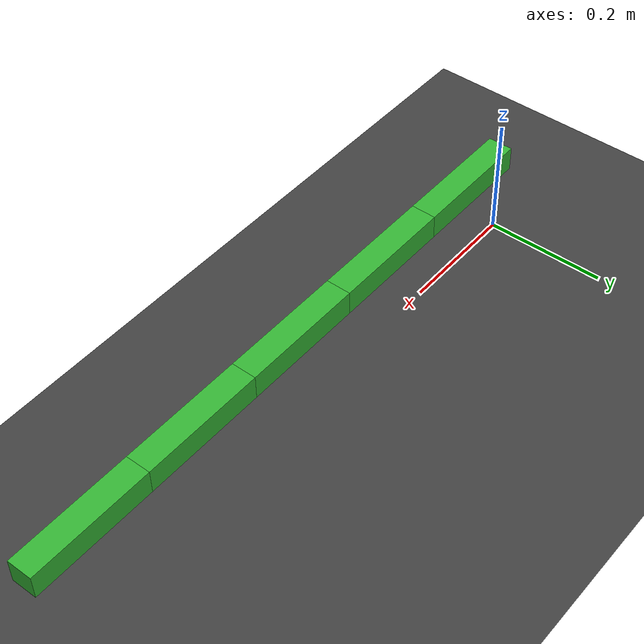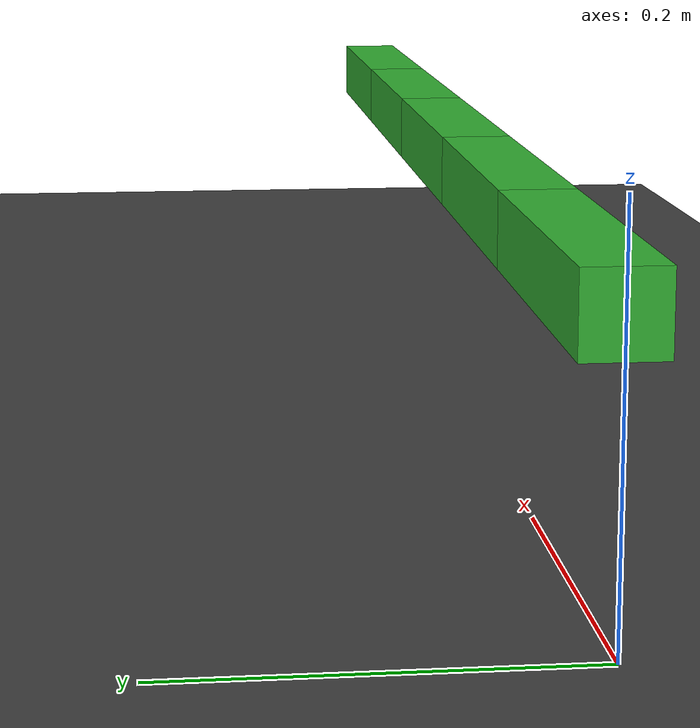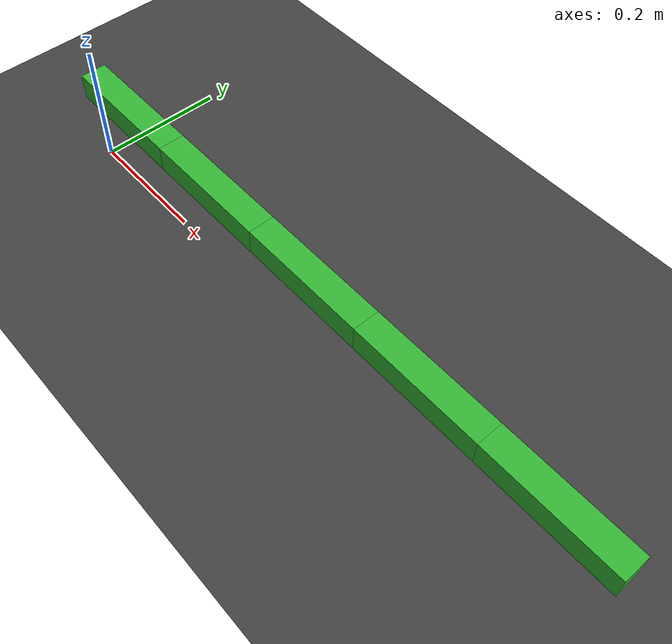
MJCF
<mujoco model="snake_scene">
  <include file="snake.xml"/>

  <statistic center="1 -0.8 1.1" extent=".3"/>

  <visual>
    <headlight diffuse="0.6 0.6 0.6" ambient="0.1 0.1 0.1" specular="0.9 0.9 0.9"/>
    <rgba haze="0.15 0.25 0.35 1"/>
    <global azimuth="140" elevation="-20"/>
  </visual>

  <asset>
    <texture builtin='checker' height='512' name='plane' rgb1='0.2 0.2 0.2' rgb2='0.3 0.3 0.3' type='2d' width='512'/>
    <texture builtin='gradient' height='128' rgb1='0.4 0.6 0.8' rgb2='0 0 0' type='skybox' width='128'/>
    <texture type="skybox" builtin="gradient" rgb1="1 1 1" rgb2="1 1 1" width="800" height="800"/>
    <texture type="2d" name="groundplane" builtin="checker" mark="edge" rgb1="1 1 1" rgb2="1 1 1"
      markrgb="0 0 0" width="300" height="300"/>
    <material name='plane' reflectance='0.000000' texrepeat='1 1' texture='plane' texuniform='true'/>
  </asset>

  <worldbody>
    <geom conaffinity="1" contype="1" condim="3" friction="1 .1 .1" name="floor" pos="0 0 0" size="40 40 0.125" type="plane" material="plane" rgba="0.5 0.5 0.5 1.0"/>
  </worldbody>
</mujoco>

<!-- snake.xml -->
<mujoco model="snake">
  <compiler angle="degree"/>
  <option timestep="0.001" gravity="0 0 -9.81"/>

  <default>
    <equality solref="0.005 1" />
    <geom type="box" size="0.05 0.02 0.02" density="500" rgba="0.2 0.7 0.2 1"/>
    <joint limited="true" range="-300 300" damping="0.2" stiffness="5"/>
    <motor ctrllimited="true" ctrlrange="-3 3"/>
  </default>

  <worldbody>
    <!-- Segment 0 (root) -->
    <body name="seg0" pos="0 0 0.15">
      <freejoint name="root_free"/>
      <geom name="seg0_geom" type="box" size="0.10 0.02 0.02" pos="0.10 0 0"/>

      <!-- Segment 1 -->
      <body name="seg1" pos="0.20 0 0">
        <joint name="j1_yaw" type="hinge" axis="0 0 1" pos="0.0 0 0"/>
        <geom name="seg1_geom" type="box" size="0.10 0.02 0.02" pos="0.10 0 0"/>
        <!-- Segment 2 -->
        <body name="seg2" pos="0.20 0 0">
          <joint name="j2_pitch" type="hinge" axis="0 1 0" pos="0.0 0 0"/>
          <geom name="seg2_geom" type="box" size="0.10 0.02 0.02" pos="0.10 0 0"/>
          <!-- Segment 3 -->
          <body name="seg3" pos="0.20 0 0">
            <joint name="j3_yaw" type="hinge" axis="0 0 1" pos="0.0 0 0"/>
            <geom name="seg3_geom" type="box" size="0.10 0.02 0.02" pos="0.10 0 0"/>
            <!-- Segment 4 -->
            <body name="seg4" pos="0.20 0 0">
              <joint name="j4_pitch" type="hinge" axis="0 1 0" pos="0.0 0 0"/>
              <geom name="seg4_geom" type="box" size="0.10 0.02 0.02" pos="0.10 0 0"/>
            </body>
          </body>
        </body>
      </body>
    </body>
  </worldbody>

  <actuator>
    <motor name="m1_yaw" joint="j1_yaw"/>
    <motor name="m2_pitch" joint="j2_pitch"/>
    <motor name="m3_yaw" joint="j3_yaw"/>
    <motor name="m4_pitch" joint="j4_pitch"/>
  </actuator>

  <sensor>
    <jointpos joint="j1_yaw"/>
    <jointpos joint="j2_pitch"/>
    <jointpos joint="j3_yaw"/>
    <jointpos joint="j4_pitch"/>
  </sensor>
</mujoco>
